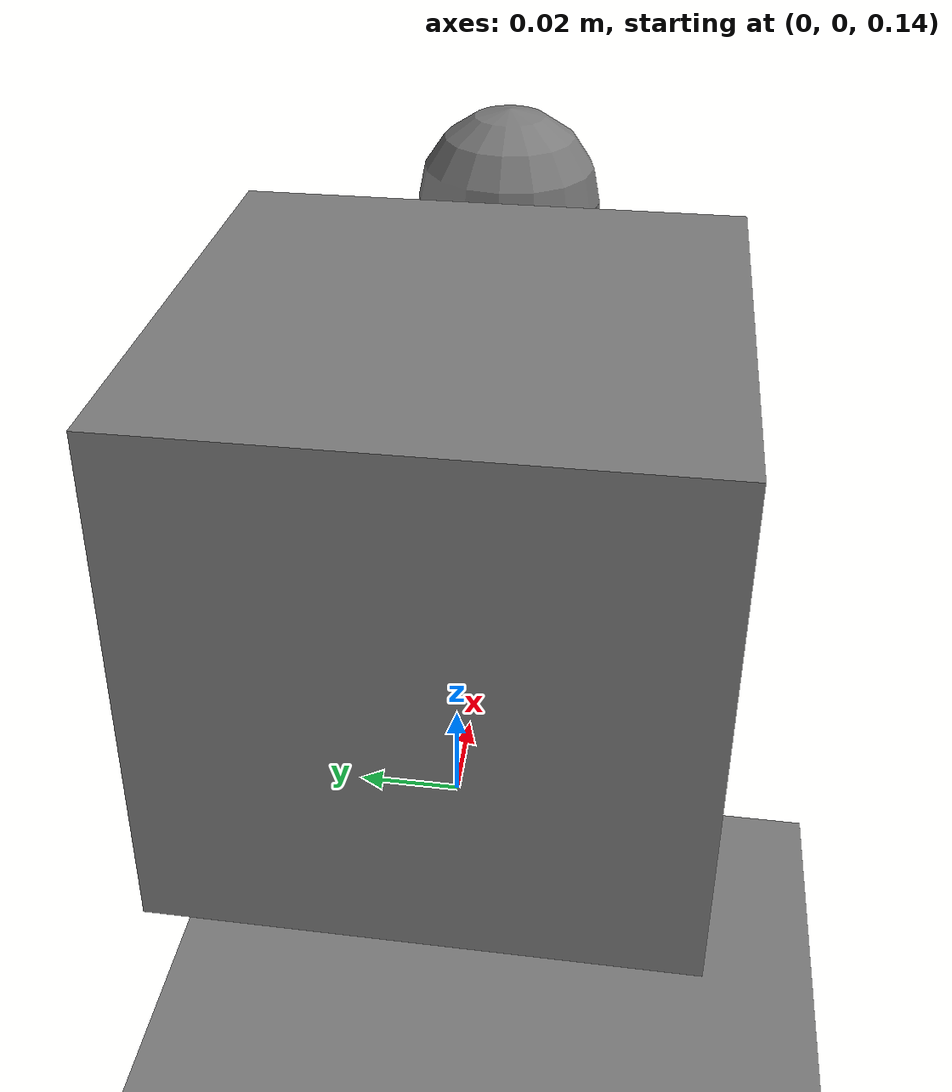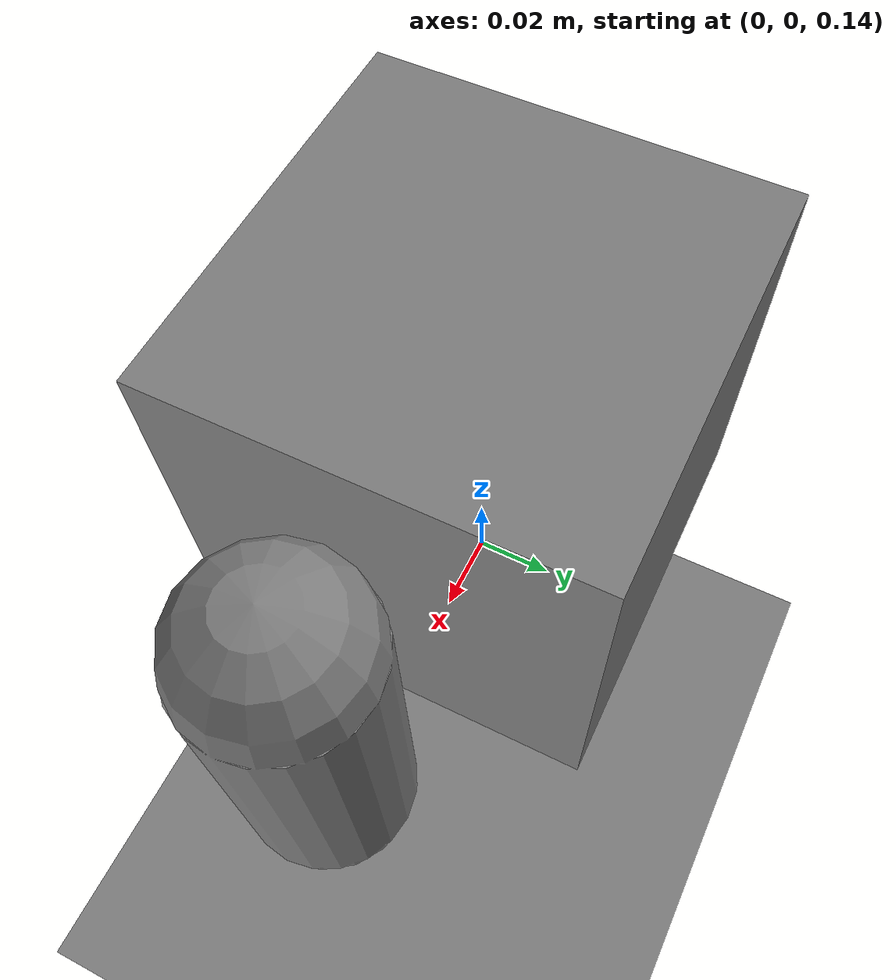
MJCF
<mujoco model="free_base">
  <option timestep="0.002"/>
  <worldbody>
    <geom name="floor" type="plane" size="1 1 0.05"/>
    <body name="base" pos="0 0 0.2">
      <freejoint name="root"/>
      <geom type="box" size="0.05 0.05 0.05" mass="0.4"/>
      <body name="link" pos="0.08 0 0">
        <joint name="hinge" type="hinge" axis="0 0 1" range="-1 1"/>
        <geom type="capsule" size="0.02 0.04" mass="0.1"/>
      </body>
    </body>
  </worldbody>
  <actuator>
    <motor name="act" joint="hinge" ctrlrange="-1 1"/>
  </actuator>
</mujoco>
